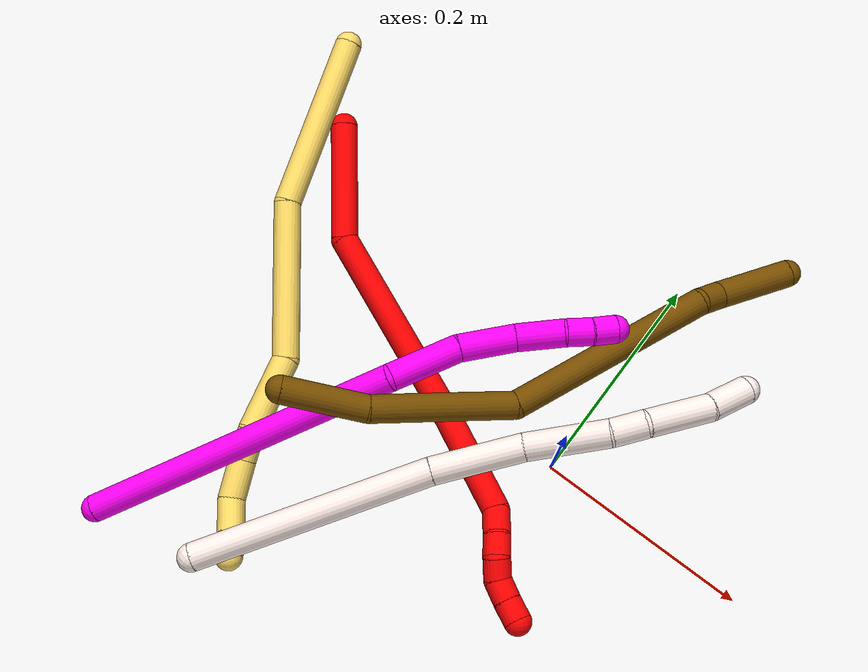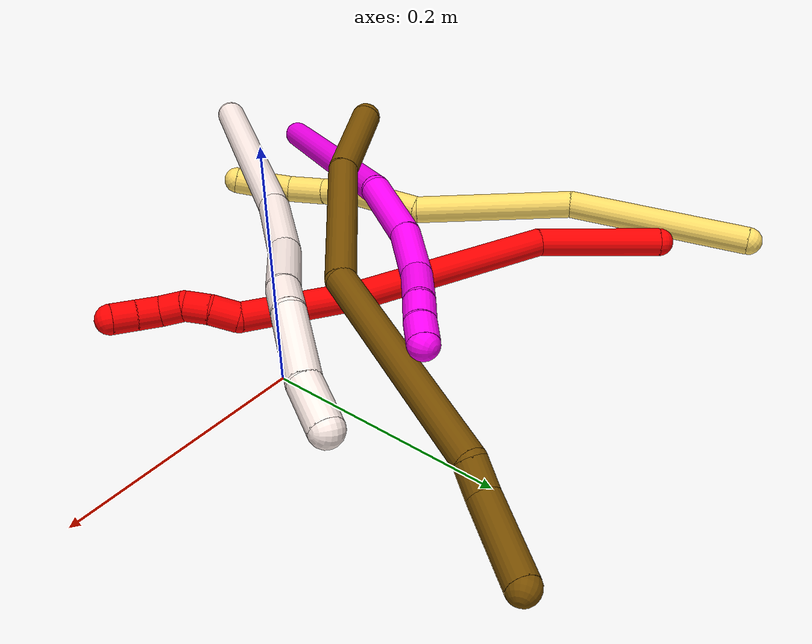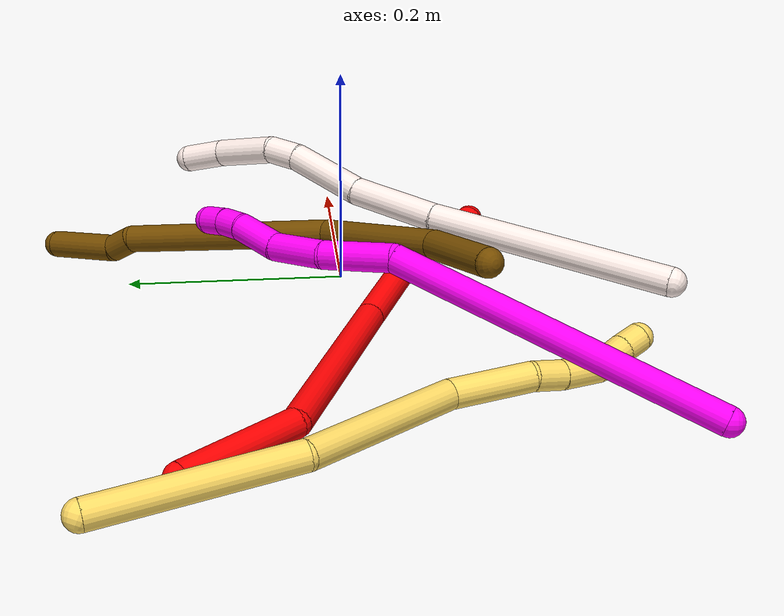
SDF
<sdf version="1.7">
 <world name="default">
  <model name="2">
   <static>0</static>
   <link name="2">
    <collision name="collision-cylinder-e_1_1_4">
     <pose>0.017048 -0.050882 0.011841 1.34214 0.315436 0.251225</pose>
     <geometry><cylinder><radius>0.0125</radius><length>0.109906</length></cylinder></geometry>
     <surface>
      <friction><ode><mu>1.16</mu><mu2>1.16</mu2><slip1>0</slip1><slip2>0</slip2></ode></friction>
      <contact><ode><kp>1e+06</kp><kd>1</kd><max_vel>0</max_vel><min_depth>0.001</min_depth></ode></contact>
     </surface>
    </collision>
    <visual name="visual-cylinder-e_1_1_4">
     <pose>0.017048 -0.050882 0.011841 1.34214 0.315436 0.251225</pose>
     <geometry><cylinder><radius>0.0125</radius><length>0.109906</length></cylinder></geometry>
     <material><ambient>1 0 0 1</ambient></material>
    </visual>
    <collision name="collision-cylinder-e_2_4_5">
     <pose>0.087703 -0.174346 0.006865 1.79849 0.623694 0.77065</pose>
     <geometry><cylinder><radius>0.0125</radius><length>0.183571</length></cylinder></geometry>
     <surface>
      <friction><ode><mu>1.16</mu><mu2>1.16</mu2><slip1>0</slip1><slip2>0</slip2></ode></friction>
      <contact><ode><kp>1e+06</kp><kd>1</kd><max_vel>0</max_vel><min_depth>0.001</min_depth></ode></contact>
     </surface>
    </collision>
    <visual name="visual-cylinder-e_2_4_5">
     <pose>0.087703 -0.174346 0.006865 1.79849 0.623694 0.77065</pose>
     <geometry><cylinder><radius>0.0125</radius><length>0.183571</length></cylinder></geometry>
     <material><ambient>1 0 0 1</ambient></material>
    </visual>
    <collision name="collision-cylinder-e_3_5_6">
     <pose>0.173005 -0.286893 -0.014467 1.68328 0.667442 0.740335</pose>
     <geometry><cylinder><radius>0.0125</radius><length>0.102416</length></cylinder></geometry>
     <surface>
      <friction><ode><mu>1.16</mu><mu2>1.16</mu2><slip1>0</slip1><slip2>0</slip2></ode></friction>
      <contact><ode><kp>1e+06</kp><kd>1</kd><max_vel>0</max_vel><min_depth>0.001</min_depth></ode></contact>
     </surface>
    </collision>
    <visual name="visual-cylinder-e_3_5_6">
     <pose>0.173005 -0.286893 -0.014467 1.68328 0.667442 0.740335</pose>
     <geometry><cylinder><radius>0.0125</radius><length>0.102416</length></cylinder></geometry>
     <material><ambient>1 0 0 1</ambient></material>
    </visual>
    <collision name="collision-cylinder-e_4_6_7">
     <pose>0.211059 -0.335785 -0.014242 1.08272 0.561437 0.343324</pose>
     <geometry><cylinder><radius>0.0125</radius><length>0.023881</length></cylinder></geometry>
     <surface>
      <friction><ode><mu>1.16</mu><mu2>1.16</mu2><slip1>0</slip1><slip2>0</slip2></ode></friction>
      <contact><ode><kp>1e+06</kp><kd>1</kd><max_vel>0</max_vel><min_depth>0.001</min_depth></ode></contact>
     </surface>
    </collision>
    <visual name="visual-cylinder-e_4_6_7">
     <pose>0.211059 -0.335785 -0.014242 1.08272 0.561437 0.343324</pose>
     <geometry><cylinder><radius>0.0125</radius><length>0.023881</length></cylinder></geometry>
     <material><ambient>1 0 0 1</ambient></material>
    </visual>
    <collision name="collision-cylinder-e_5_7_8">
     <pose>0.221375 -0.353373 -0.006142 1.20067 0.402829 0.277778</pose>
     <geometry><cylinder><radius>0.0125</radius><length>0.020198</length></cylinder></geometry>
     <surface>
      <friction><ode><mu>1.16</mu><mu2>1.16</mu2><slip1>0</slip1><slip2>0</slip2></ode></friction>
      <contact><ode><kp>1e+06</kp><kd>1</kd><max_vel>0</max_vel><min_depth>0.001</min_depth></ode></contact>
     </surface>
    </collision>
    <visual name="visual-cylinder-e_5_7_8">
     <pose>0.221375 -0.353373 -0.006142 1.20067 0.402829 0.277778</pose>
     <geometry><cylinder><radius>0.0125</radius><length>0.020198</length></cylinder></geometry>
     <material><ambient>1 0 0 1</ambient></material>
    </visual>
    <collision name="collision-cylinder-e_6_8_9">
     <pose>0.226831 -0.371916 -0.002311 1.52324 0.150207 0.143253</pose>
     <geometry><cylinder><radius>0.0125</radius><length>0.02001</length></cylinder></geometry>
     <surface>
      <friction><ode><mu>1.16</mu><mu2>1.16</mu2><slip1>0</slip1><slip2>0</slip2></ode></friction>
      <contact><ode><kp>1e+06</kp><kd>1</kd><max_vel>0</max_vel><min_depth>0.001</min_depth></ode></contact>
     </surface>
    </collision>
    <visual name="visual-cylinder-e_6_8_9">
     <pose>0.226831 -0.371916 -0.002311 1.52324 0.150207 0.143253</pose>
     <geometry><cylinder><radius>0.0125</radius><length>0.02001</length></cylinder></geometry>
     <material><ambient>1 0 0 1</ambient></material>
    </visual>
    <collision name="collision-cylinder-e_7_9_10">
     <pose>0.234152 -0.38991 -0.002439 1.64436 0.621316 0.665472</pose>
     <geometry><cylinder><radius>0.0125</radius><length>0.020008</length></cylinder></geometry>
     <surface>
      <friction><ode><mu>1.16</mu><mu2>1.16</mu2><slip1>0</slip1><slip2>0</slip2></ode></friction>
      <contact><ode><kp>1e+06</kp><kd>1</kd><max_vel>0</max_vel><min_depth>0.001</min_depth></ode></contact>
     </surface>
    </collision>
    <visual name="visual-cylinder-e_7_9_10">
     <pose>0.234152 -0.38991 -0.002439 1.64436 0.621316 0.665472</pose>
     <geometry><cylinder><radius>0.0125</radius><length>0.020008</length></cylinder></geometry>
     <material><ambient>1 0 0 1</ambient></material>
    </visual>
    <collision name="collision-cylinder-e_8_10_2">
     <pose>0.246251 -0.405777 -0.003805 1.66953 0.677973 0.742411</pose>
     <geometry><cylinder><radius>0.0125</radius><length>0.02001</length></cylinder></geometry>
     <surface>
      <friction><ode><mu>1.16</mu><mu2>1.16</mu2><slip1>0</slip1><slip2>0</slip2></ode></friction>
      <contact><ode><kp>1e+06</kp><kd>1</kd><max_vel>0</max_vel><min_depth>0.001</min_depth></ode></contact>
     </surface>
    </collision>
    <visual name="visual-cylinder-e_8_10_2">
     <pose>0.246251 -0.405777 -0.003805 1.66953 0.677973 0.742411</pose>
     <geometry><cylinder><radius>0.0125</radius><length>0.02001</length></cylinder></geometry>
     <material><ambient>1 0 0 1</ambient></material>
    </visual>
    <collision name="collision-sphere-2">
     <pose>0.252526 -0.413531 -0.004573 0 -0 0</pose>
     <geometry><sphere><radius>0.0125</radius></sphere></geometry>
     <surface>
      <friction><ode><mu>1.16</mu><mu2>1.16</mu2><slip1>0</slip1><slip2>0</slip2></ode></friction>
      <contact><ode><kp>1e+06</kp><kd>1</kd><max_vel>0</max_vel><min_depth>0.001</min_depth></ode></contact>
     </surface>
    </collision>
    <visual name="visual-sphere-2">
     <pose>0.252526 -0.413531 -0.004573 0 -0 0</pose>
     <geometry><sphere><radius>0.0125</radius></sphere></geometry>
     <material><ambient>1 0 0 1</ambient></material>
    </visual>
    <collision name="collision-sphere-10">
     <pose>0.239975 -0.398022 -0.003036 0 -0 0</pose>
     <geometry><sphere><radius>0.0125</radius></sphere></geometry>
     <surface>
      <friction><ode><mu>1.16</mu><mu2>1.16</mu2><slip1>0</slip1><slip2>0</slip2></ode></friction>
      <contact><ode><kp>1e+06</kp><kd>1</kd><max_vel>0</max_vel><min_depth>0.001</min_depth></ode></contact>
     </surface>
    </collision>
    <visual name="visual-sphere-10">
     <pose>0.239975 -0.398022 -0.003036 0 -0 0</pose>
     <geometry><sphere><radius>0.0125</radius></sphere></geometry>
     <material><ambient>1 0 0 1</ambient></material>
    </visual>
    <collision name="collision-sphere-9">
     <pose>0.228329 -0.381797 -0.001841 0 -0 0</pose>
     <geometry><sphere><radius>0.0125</radius></sphere></geometry>
     <surface>
      <friction><ode><mu>1.16</mu><mu2>1.16</mu2><slip1>0</slip1><slip2>0</slip2></ode></friction>
      <contact><ode><kp>1e+06</kp><kd>1</kd><max_vel>0</max_vel><min_depth>0.001</min_depth></ode></contact>
     </surface>
    </collision>
    <visual name="visual-sphere-9">
     <pose>0.228329 -0.381797 -0.001841 0 -0 0</pose>
     <geometry><sphere><radius>0.0125</radius></sphere></geometry>
     <material><ambient>1 0 0 1</ambient></material>
    </visual>
    <collision name="collision-sphere-4">
     <pose>0.034096 -0.101764 0.023683 0 -0 0</pose>
     <geometry><sphere><radius>0.0125</radius></sphere></geometry>
     <surface>
      <friction><ode><mu>1.16</mu><mu2>1.16</mu2><slip1>0</slip1><slip2>0</slip2></ode></friction>
      <contact><ode><kp>1e+06</kp><kd>1</kd><max_vel>0</max_vel><min_depth>0.001</min_depth></ode></contact>
     </surface>
    </collision>
    <visual name="visual-sphere-4">
     <pose>0.034096 -0.101764 0.023683 0 -0 0</pose>
     <geometry><sphere><radius>0.0125</radius></sphere></geometry>
     <material><ambient>1 0 0 1</ambient></material>
    </visual>
    <collision name="collision-sphere-1">
     <geometry><sphere><radius>0.0125</radius></sphere></geometry>
     <surface>
      <friction><ode><mu>1.16</mu><mu2>1.16</mu2><slip1>0</slip1><slip2>0</slip2></ode></friction>
      <contact><ode><kp>1e+06</kp><kd>1</kd><max_vel>0</max_vel><min_depth>0.001</min_depth></ode></contact>
     </surface>
    </collision>
    <visual name="visual-sphere-1">
     <geometry><sphere><radius>0.0125</radius></sphere></geometry>
     <material><ambient>1 0 0 1</ambient></material>
    </visual>
    <collision name="collision-sphere-8">
     <pose>0.225334 -0.362035 -0.002781 0 -0 0</pose>
     <geometry><sphere><radius>0.0125</radius></sphere></geometry>
     <surface>
      <friction><ode><mu>1.16</mu><mu2>1.16</mu2><slip1>0</slip1><slip2>0</slip2></ode></friction>
      <contact><ode><kp>1e+06</kp><kd>1</kd><max_vel>0</max_vel><min_depth>0.001</min_depth></ode></contact>
     </surface>
    </collision>
    <visual name="visual-sphere-8">
     <pose>0.225334 -0.362035 -0.002781 0 -0 0</pose>
     <geometry><sphere><radius>0.0125</radius></sphere></geometry>
     <material><ambient>1 0 0 1</ambient></material>
    </visual>
    <collision name="collision-sphere-5">
     <pose>0.141309 -0.246928 -0.009953 0 -0 0</pose>
     <geometry><sphere><radius>0.0125</radius></sphere></geometry>
     <surface>
      <friction><ode><mu>1.16</mu><mu2>1.16</mu2><slip1>0</slip1><slip2>0</slip2></ode></friction>
      <contact><ode><kp>1e+06</kp><kd>1</kd><max_vel>0</max_vel><min_depth>0.001</min_depth></ode></contact>
     </surface>
    </collision>
    <visual name="visual-sphere-5">
     <pose>0.141309 -0.246928 -0.009953 0 -0 0</pose>
     <geometry><sphere><radius>0.0125</radius></sphere></geometry>
     <material><ambient>1 0 0 1</ambient></material>
    </visual>
    <collision name="collision-sphere-6">
     <pose>0.204702 -0.326858 -0.018982 0 -0 0</pose>
     <geometry><sphere><radius>0.0125</radius></sphere></geometry>
     <surface>
      <friction><ode><mu>1.16</mu><mu2>1.16</mu2><slip1>0</slip1><slip2>0</slip2></ode></friction>
      <contact><ode><kp>1e+06</kp><kd>1</kd><max_vel>0</max_vel><min_depth>0.001</min_depth></ode></contact>
     </surface>
    </collision>
    <visual name="visual-sphere-6">
     <pose>0.204702 -0.326858 -0.018982 0 -0 0</pose>
     <geometry><sphere><radius>0.0125</radius></sphere></geometry>
     <material><ambient>1 0 0 1</ambient></material>
    </visual>
    <collision name="collision-sphere-7">
     <pose>0.217416 -0.344712 -0.009503 0 -0 0</pose>
     <geometry><sphere><radius>0.0125</radius></sphere></geometry>
     <surface>
      <friction><ode><mu>1.16</mu><mu2>1.16</mu2><slip1>0</slip1><slip2>0</slip2></ode></friction>
      <contact><ode><kp>1e+06</kp><kd>1</kd><max_vel>0</max_vel><min_depth>0.001</min_depth></ode></contact>
     </surface>
    </collision>
    <visual name="visual-sphere-7">
     <pose>0.217416 -0.344712 -0.009503 0 -0 0</pose>
     <geometry><sphere><radius>0.0125</radius></sphere></geometry>
     <material><ambient>1 0 0 1</ambient></material>
    </visual>
    <inertial>
     <pose>0.118709 -0.210997 0.000889 0 -0 0</pose>
     <mass>0.5</mass>
     <inertia>
      <ixx>0.000865</ixx>
      <ixy>0</ixy>
      <ixz>0</ixz>
      <iyy>0.000533</iyy>
      <iyz>0</iyz>
      <izz>0.000196</izz>
     </inertia>
    </inertial>
   </link>
   <pose>-0.343339 0.142122 0.01142 0.560754 -0.786234 0.203623</pose>
  </model>
  <model name="5">
   <static>0</static>
   <link name="5">
    <collision name="collision-cylinder-e_1_1_4">
     <pose>0.049789 -0.049748 -0.044326 2.29862 0.641732 1.27578</pose>
     <geometry><cylinder><radius>0.0125</radius><length>0.166355</length></cylinder></geometry>
     <surface>
      <friction><ode><mu>1.16</mu><mu2>1.16</mu2><slip1>0</slip1><slip2>0</slip2></ode></friction>
      <contact><ode><kp>1e+06</kp><kd>1</kd><max_vel>0</max_vel><min_depth>0.001</min_depth></ode></contact>
     </surface>
    </collision>
    <visual name="visual-cylinder-e_1_1_4">
     <pose>0.049789 -0.049748 -0.044326 2.29862 0.641732 1.27578</pose>
     <geometry><cylinder><radius>0.0125</radius><length>0.166355</length></cylinder></geometry>
     <material><ambient>1 0.858824 0.4 1</ambient></material>
    </visual>
    <collision name="collision-cylinder-e_2_4_5">
     <pose>0.121333 -0.154661 -0.130954 2.22499 0.303291 0.600782</pose>
     <geometry><cylinder><radius>0.0125</radius><length>0.145685</length></cylinder></geometry>
     <surface>
      <friction><ode><mu>1.16</mu><mu2>1.16</mu2><slip1>0</slip1><slip2>0</slip2></ode></friction>
      <contact><ode><kp>1e+06</kp><kd>1</kd><max_vel>0</max_vel><min_depth>0.001</min_depth></ode></contact>
     </surface>
    </collision>
    <visual name="visual-cylinder-e_2_4_5">
     <pose>0.121333 -0.154661 -0.130954 2.22499 0.303291 0.600782</pose>
     <geometry><cylinder><radius>0.0125</radius><length>0.145685</length></cylinder></geometry>
     <material><ambient>1 0.858824 0.4 1</ambient></material>
    </visual>
    <collision name="collision-cylinder-e_3_5_6">
     <pose>0.166723 -0.229373 -0.191239 2.31451 0.727186 1.42864</pose>
     <geometry><cylinder><radius>0.0125</radius><length>0.071108</length></cylinder></geometry>
     <surface>
      <friction><ode><mu>1.16</mu><mu2>1.16</mu2><slip1>0</slip1><slip2>0</slip2></ode></friction>
      <contact><ode><kp>1e+06</kp><kd>1</kd><max_vel>0</max_vel><min_depth>0.001</min_depth></ode></contact>
     </surface>
    </collision>
    <visual name="visual-cylinder-e_3_5_6">
     <pose>0.166723 -0.229373 -0.191239 2.31451 0.727186 1.42864</pose>
     <geometry><cylinder><radius>0.0125</radius><length>0.071108</length></cylinder></geometry>
     <material><ambient>1 0.858824 0.4 1</ambient></material>
    </visual>
    <collision name="collision-cylinder-e_4_6_7">
     <pose>0.198143 -0.25922 -0.214323 2.03071 0.595288 0.918122</pose>
     <geometry><cylinder><radius>0.0125</radius><length>0.027763</length></cylinder></geometry>
     <surface>
      <friction><ode><mu>1.16</mu><mu2>1.16</mu2><slip1>0</slip1><slip2>0</slip2></ode></friction>
      <contact><ode><kp>1e+06</kp><kd>1</kd><max_vel>0</max_vel><min_depth>0.001</min_depth></ode></contact>
     </surface>
    </collision>
    <visual name="visual-cylinder-e_4_6_7">
     <pose>0.198143 -0.25922 -0.214323 2.03071 0.595288 0.918122</pose>
     <geometry><cylinder><radius>0.0125</radius><length>0.027763</length></cylinder></geometry>
     <material><ambient>1 0.858824 0.4 1</ambient></material>
    </visual>
    <collision name="collision-cylinder-e_5_7_8">
     <pose>0.215695 -0.282269 -0.228299 2.17889 0.561348 1.00863</pose>
     <geometry><cylinder><radius>0.0125</radius><length>0.036699</length></cylinder></geometry>
     <surface>
      <friction><ode><mu>1.16</mu><mu2>1.16</mu2><slip1>0</slip1><slip2>0</slip2></ode></friction>
      <contact><ode><kp>1e+06</kp><kd>1</kd><max_vel>0</max_vel><min_depth>0.001</min_depth></ode></contact>
     </surface>
    </collision>
    <visual name="visual-cylinder-e_5_7_8">
     <pose>0.215695 -0.282269 -0.228299 2.17889 0.561348 1.00863</pose>
     <geometry><cylinder><radius>0.0125</radius><length>0.036699</length></cylinder></geometry>
     <material><ambient>1 0.858824 0.4 1</ambient></material>
    </visual>
    <collision name="collision-cylinder-e_6_8_9">
     <pose>0.229809 -0.304439 -0.248861 2.46314 0.281827 0.764464</pose>
     <geometry><cylinder><radius>0.0125</radius><length>0.031258</length></cylinder></geometry>
     <surface>
      <friction><ode><mu>1.16</mu><mu2>1.16</mu2><slip1>0</slip1><slip2>0</slip2></ode></friction>
      <contact><ode><kp>1e+06</kp><kd>1</kd><max_vel>0</max_vel><min_depth>0.001</min_depth></ode></contact>
     </surface>
    </collision>
    <visual name="visual-cylinder-e_6_8_9">
     <pose>0.229809 -0.304439 -0.248861 2.46314 0.281827 0.764464</pose>
     <geometry><cylinder><radius>0.0125</radius><length>0.031258</length></cylinder></geometry>
     <material><ambient>1 0.858824 0.4 1</ambient></material>
    </visual>
    <collision name="collision-cylinder-e_7_9_2">
     <pose>0.237832 -0.320062 -0.268273 2.46515 0.355394 0.944159</pose>
     <geometry><cylinder><radius>0.0125</radius><length>0.021132</length></cylinder></geometry>
     <surface>
      <friction><ode><mu>1.16</mu><mu2>1.16</mu2><slip1>0</slip1><slip2>0</slip2></ode></friction>
      <contact><ode><kp>1e+06</kp><kd>1</kd><max_vel>0</max_vel><min_depth>0.001</min_depth></ode></contact>
     </surface>
    </collision>
    <visual name="visual-cylinder-e_7_9_2">
     <pose>0.237832 -0.320062 -0.268273 2.46515 0.355394 0.944159</pose>
     <geometry><cylinder><radius>0.0125</radius><length>0.021132</length></cylinder></geometry>
     <material><ambient>1 0.858824 0.4 1</ambient></material>
    </visual>
    <collision name="collision-sphere-2">
     <pose>0.241509 -0.326263 -0.275998 0 -0 0</pose>
     <geometry><sphere><radius>0.0125</radius></sphere></geometry>
     <surface>
      <friction><ode><mu>1.16</mu><mu2>1.16</mu2><slip1>0</slip1><slip2>0</slip2></ode></friction>
      <contact><ode><kp>1e+06</kp><kd>1</kd><max_vel>0</max_vel><min_depth>0.001</min_depth></ode></contact>
     </surface>
    </collision>
    <visual name="visual-sphere-2">
     <pose>0.241509 -0.326263 -0.275998 0 -0 0</pose>
     <geometry><sphere><radius>0.0125</radius></sphere></geometry>
     <material><ambient>1 0.858824 0.4 1</ambient></material>
    </visual>
    <collision name="collision-sphere-9">
     <pose>0.234156 -0.313861 -0.260549 0 -0 0</pose>
     <geometry><sphere><radius>0.0125</radius></sphere></geometry>
     <surface>
      <friction><ode><mu>1.16</mu><mu2>1.16</mu2><slip1>0</slip1><slip2>0</slip2></ode></friction>
      <contact><ode><kp>1e+06</kp><kd>1</kd><max_vel>0</max_vel><min_depth>0.001</min_depth></ode></contact>
     </surface>
    </collision>
    <visual name="visual-sphere-9">
     <pose>0.234156 -0.313861 -0.260549 0 -0 0</pose>
     <geometry><sphere><radius>0.0125</radius></sphere></geometry>
     <material><ambient>1 0.858824 0.4 1</ambient></material>
    </visual>
    <collision name="collision-sphere-4">
     <pose>0.099578 -0.099496 -0.088651 0 -0 0</pose>
     <geometry><sphere><radius>0.0125</radius></sphere></geometry>
     <surface>
      <friction><ode><mu>1.16</mu><mu2>1.16</mu2><slip1>0</slip1><slip2>0</slip2></ode></friction>
      <contact><ode><kp>1e+06</kp><kd>1</kd><max_vel>0</max_vel><min_depth>0.001</min_depth></ode></contact>
     </surface>
    </collision>
    <visual name="visual-sphere-4">
     <pose>0.099578 -0.099496 -0.088651 0 -0 0</pose>
     <geometry><sphere><radius>0.0125</radius></sphere></geometry>
     <material><ambient>1 0.858824 0.4 1</ambient></material>
    </visual>
    <collision name="collision-sphere-1">
     <geometry><sphere><radius>0.0125</radius></sphere></geometry>
     <surface>
      <friction><ode><mu>1.16</mu><mu2>1.16</mu2><slip1>0</slip1><slip2>0</slip2></ode></friction>
      <contact><ode><kp>1e+06</kp><kd>1</kd><max_vel>0</max_vel><min_depth>0.001</min_depth></ode></contact>
     </surface>
    </collision>
    <visual name="visual-sphere-1">
     <geometry><sphere><radius>0.0125</radius></sphere></geometry>
     <material><ambient>1 0.858824 0.4 1</ambient></material>
    </visual>
    <collision name="collision-sphere-8">
     <pose>0.225462 -0.295018 -0.237173 0 -0 0</pose>
     <geometry><sphere><radius>0.0125</radius></sphere></geometry>
     <surface>
      <friction><ode><mu>1.16</mu><mu2>1.16</mu2><slip1>0</slip1><slip2>0</slip2></ode></friction>
      <contact><ode><kp>1e+06</kp><kd>1</kd><max_vel>0</max_vel><min_depth>0.001</min_depth></ode></contact>
     </surface>
    </collision>
    <visual name="visual-sphere-8">
     <pose>0.225462 -0.295018 -0.237173 0 -0 0</pose>
     <geometry><sphere><radius>0.0125</radius></sphere></geometry>
     <material><ambient>1 0.858824 0.4 1</ambient></material>
    </visual>
    <collision name="collision-sphere-5">
     <pose>0.143088 -0.209826 -0.173257 0 -0 0</pose>
     <geometry><sphere><radius>0.0125</radius></sphere></geometry>
     <surface>
      <friction><ode><mu>1.16</mu><mu2>1.16</mu2><slip1>0</slip1><slip2>0</slip2></ode></friction>
      <contact><ode><kp>1e+06</kp><kd>1</kd><max_vel>0</max_vel><min_depth>0.001</min_depth></ode></contact>
     </surface>
    </collision>
    <visual name="visual-sphere-5">
     <pose>0.143088 -0.209826 -0.173257 0 -0 0</pose>
     <geometry><sphere><radius>0.0125</radius></sphere></geometry>
     <material><ambient>1 0.858824 0.4 1</ambient></material>
    </visual>
    <collision name="collision-sphere-6">
     <pose>0.190358 -0.248921 -0.209221 0 -0 0</pose>
     <geometry><sphere><radius>0.0125</radius></sphere></geometry>
     <surface>
      <friction><ode><mu>1.16</mu><mu2>1.16</mu2><slip1>0</slip1><slip2>0</slip2></ode></friction>
      <contact><ode><kp>1e+06</kp><kd>1</kd><max_vel>0</max_vel><min_depth>0.001</min_depth></ode></contact>
     </surface>
    </collision>
    <visual name="visual-sphere-6">
     <pose>0.190358 -0.248921 -0.209221 0 -0 0</pose>
     <geometry><sphere><radius>0.0125</radius></sphere></geometry>
     <material><ambient>1 0.858824 0.4 1</ambient></material>
    </visual>
    <collision name="collision-sphere-7">
     <pose>0.205927 -0.26952 -0.219425 0 -0 0</pose>
     <geometry><sphere><radius>0.0125</radius></sphere></geometry>
     <surface>
      <friction><ode><mu>1.16</mu><mu2>1.16</mu2><slip1>0</slip1><slip2>0</slip2></ode></friction>
      <contact><ode><kp>1e+06</kp><kd>1</kd><max_vel>0</max_vel><min_depth>0.001</min_depth></ode></contact>
     </surface>
    </collision>
    <visual name="visual-sphere-7">
     <pose>0.205927 -0.26952 -0.219425 0 -0 0</pose>
     <geometry><sphere><radius>0.0125</radius></sphere></geometry>
     <material><ambient>1 0.858824 0.4 1</ambient></material>
    </visual>
    <inertial>
     <pose>0.126881 -0.161906 -0.135654 0 -0 0</pose>
     <mass>0.5</mass>
     <inertia>
      <ixx>0.000803</ixx>
      <ixy>0</ixy>
      <ixz>0</ixz>
      <iyy>0.000455</iyy>
      <iyz>0</iyz>
      <izz>9.8e-05</izz>
     </inertia>
    </inertial>
   </link>
   <pose>-0.388568 0.207896 0.015225 2.42265 -0.053593 -2.18885</pose>
  </model>
  <model name="10">
   <static>0</static>
   <link name="10">
    <collision name="collision-cylinder-e_1_1_4">
     <pose>0.01464 0.074777 -0.126042 -2.60613 0.099561 -0.359329</pose>
     <geometry><cylinder><radius>0.0125</radius><length>0.294568</length></cylinder></geometry>
     <surface>
      <friction><ode><mu>1.16</mu><mu2>1.16</mu2><slip1>0</slip1><slip2>0</slip2></ode></friction>
      <contact><ode><kp>1e+06</kp><kd>1</kd><max_vel>0</max_vel><min_depth>0.001</min_depth></ode></contact>
     </surface>
    </collision>
    <visual name="visual-cylinder-e_1_1_4">
     <pose>0.01464 0.074777 -0.126042 -2.60613 0.099561 -0.359329</pose>
     <geometry><cylinder><radius>0.0125</radius><length>0.294568</length></cylinder></geometry>
     <material><ambient>1 0 0.964706 1</ambient></material>
    </visual>
    <collision name="collision-cylinder-e_2_4_5">
     <pose>0.0418 0.156882 -0.281098 -2.8942 0.396277 -2.03267</pose>
     <geometry><cylinder><radius>0.0125</radius><length>0.064876</length></cylinder></geometry>
     <surface>
      <friction><ode><mu>1.16</mu><mu2>1.16</mu2><slip1>0</slip1><slip2>0</slip2></ode></friction>
      <contact><ode><kp>1e+06</kp><kd>1</kd><max_vel>0</max_vel><min_depth>0.001</min_depth></ode></contact>
     </surface>
    </collision>
    <visual name="visual-cylinder-e_2_4_5">
     <pose>0.0418 0.156882 -0.281098 -2.8942 0.396277 -2.03267</pose>
     <geometry><cylinder><radius>0.0125</radius><length>0.064876</length></cylinder></geometry>
     <material><ambient>1 0 0.964706 1</ambient></material>
    </visual>
    <collision name="collision-cylinder-e_3_5_6">
     <pose>0.067266 0.174244 -0.330393 -2.6822 0.519642 -1.69874</pose>
     <geometry><cylinder><radius>0.0125</radius><length>0.052139</length></cylinder></geometry>
     <surface>
      <friction><ode><mu>1.16</mu><mu2>1.16</mu2><slip1>0</slip1><slip2>0</slip2></ode></friction>
      <contact><ode><kp>1e+06</kp><kd>1</kd><max_vel>0</max_vel><min_depth>0.001</min_depth></ode></contact>
     </surface>
    </collision>
    <visual name="visual-cylinder-e_3_5_6">
     <pose>0.067266 0.174244 -0.330393 -2.6822 0.519642 -1.69874</pose>
     <geometry><cylinder><radius>0.0125</radius><length>0.052139</length></cylinder></geometry>
     <material><ambient>1 0 0.964706 1</ambient></material>
    </visual>
    <collision name="collision-cylinder-e_4_6_7">
     <pose>0.088071 0.197839 -0.36601 -2.41747 0.3666 -0.910336</pose>
     <geometry><cylinder><radius>0.0125</radius><length>0.043857</length></cylinder></geometry>
     <surface>
      <friction><ode><mu>1.16</mu><mu2>1.16</mu2><slip1>0</slip1><slip2>0</slip2></ode></friction>
      <contact><ode><kp>1e+06</kp><kd>1</kd><max_vel>0</max_vel><min_depth>0.001</min_depth></ode></contact>
     </surface>
    </collision>
    <visual name="visual-cylinder-e_4_6_7">
     <pose>0.088071 0.197839 -0.36601 -2.41747 0.3666 -0.910336</pose>
     <geometry><cylinder><radius>0.0125</radius><length>0.043857</length></cylinder></geometry>
     <material><ambient>1 0 0.964706 1</ambient></material>
    </visual>
    <collision name="collision-cylinder-e_5_7_8">
     <pose>0.102092 0.217193 -0.389247 -2.50905 0.561353 -1.44434</pose>
     <geometry><cylinder><radius>0.0125</radius><length>0.023148</length></cylinder></geometry>
     <surface>
      <friction><ode><mu>1.16</mu><mu2>1.16</mu2><slip1>0</slip1><slip2>0</slip2></ode></friction>
      <contact><ode><kp>1e+06</kp><kd>1</kd><max_vel>0</max_vel><min_depth>0.001</min_depth></ode></contact>
     </surface>
    </collision>
    <visual name="visual-cylinder-e_5_7_8">
     <pose>0.102092 0.217193 -0.389247 -2.50905 0.561353 -1.44434</pose>
     <geometry><cylinder><radius>0.0125</radius><length>0.023148</length></cylinder></geometry>
     <material><ambient>1 0 0.964706 1</ambient></material>
    </visual>
    <collision name="collision-cylinder-e_6_8_2">
     <pose>0.114375 0.22706 -0.40493 -2.65923 0.60869 -1.81291</pose>
     <geometry><cylinder><radius>0.0125</radius><length>0.021412</length></cylinder></geometry>
     <surface>
      <friction><ode><mu>1.16</mu><mu2>1.16</mu2><slip1>0</slip1><slip2>0</slip2></ode></friction>
      <contact><ode><kp>1e+06</kp><kd>1</kd><max_vel>0</max_vel><min_depth>0.001</min_depth></ode></contact>
     </surface>
    </collision>
    <visual name="visual-cylinder-e_6_8_2">
     <pose>0.114375 0.22706 -0.40493 -2.65923 0.60869 -1.81291</pose>
     <geometry><cylinder><radius>0.0125</radius><length>0.021412</length></cylinder></geometry>
     <material><ambient>1 0 0.964706 1</ambient></material>
    </visual>
    <collision name="collision-sphere-2">
     <pose>0.120497 0.231134 -0.412711 0 -0 0</pose>
     <geometry><sphere><radius>0.0125</radius></sphere></geometry>
     <surface>
      <friction><ode><mu>1.16</mu><mu2>1.16</mu2><slip1>0</slip1><slip2>0</slip2></ode></friction>
      <contact><ode><kp>1e+06</kp><kd>1</kd><max_vel>0</max_vel><min_depth>0.001</min_depth></ode></contact>
     </surface>
    </collision>
    <visual name="visual-sphere-2">
     <pose>0.120497 0.231134 -0.412711 0 -0 0</pose>
     <geometry><sphere><radius>0.0125</radius></sphere></geometry>
     <material><ambient>1 0 0.964706 1</ambient></material>
    </visual>
    <collision name="collision-sphere-4">
     <pose>0.029279 0.149555 -0.252084 0 -0 0</pose>
     <geometry><sphere><radius>0.0125</radius></sphere></geometry>
     <surface>
      <friction><ode><mu>1.16</mu><mu2>1.16</mu2><slip1>0</slip1><slip2>0</slip2></ode></friction>
      <contact><ode><kp>1e+06</kp><kd>1</kd><max_vel>0</max_vel><min_depth>0.001</min_depth></ode></contact>
     </surface>
    </collision>
    <visual name="visual-sphere-4">
     <pose>0.029279 0.149555 -0.252084 0 -0 0</pose>
     <geometry><sphere><radius>0.0125</radius></sphere></geometry>
     <material><ambient>1 0 0.964706 1</ambient></material>
    </visual>
    <collision name="collision-sphere-1">
     <geometry><sphere><radius>0.0125</radius></sphere></geometry>
     <surface>
      <friction><ode><mu>1.16</mu><mu2>1.16</mu2><slip1>0</slip1><slip2>0</slip2></ode></friction>
      <contact><ode><kp>1e+06</kp><kd>1</kd><max_vel>0</max_vel><min_depth>0.001</min_depth></ode></contact>
     </surface>
    </collision>
    <visual name="visual-sphere-1">
     <geometry><sphere><radius>0.0125</radius></sphere></geometry>
     <material><ambient>1 0 0.964706 1</ambient></material>
    </visual>
    <collision name="collision-sphere-8">
     <pose>0.108254 0.222985 -0.397149 0 -0 0</pose>
     <geometry><sphere><radius>0.0125</radius></sphere></geometry>
     <surface>
      <friction><ode><mu>1.16</mu><mu2>1.16</mu2><slip1>0</slip1><slip2>0</slip2></ode></friction>
      <contact><ode><kp>1e+06</kp><kd>1</kd><max_vel>0</max_vel><min_depth>0.001</min_depth></ode></contact>
     </surface>
    </collision>
    <visual name="visual-sphere-8">
     <pose>0.108254 0.222985 -0.397149 0 -0 0</pose>
     <geometry><sphere><radius>0.0125</radius></sphere></geometry>
     <material><ambient>1 0 0.964706 1</ambient></material>
    </visual>
    <collision name="collision-sphere-5">
     <pose>0.054321 0.16421 -0.310111 0 -0 0</pose>
     <geometry><sphere><radius>0.0125</radius></sphere></geometry>
     <surface>
      <friction><ode><mu>1.16</mu><mu2>1.16</mu2><slip1>0</slip1><slip2>0</slip2></ode></friction>
      <contact><ode><kp>1e+06</kp><kd>1</kd><max_vel>0</max_vel><min_depth>0.001</min_depth></ode></contact>
     </surface>
    </collision>
    <visual name="visual-sphere-5">
     <pose>0.054321 0.16421 -0.310111 0 -0 0</pose>
     <geometry><sphere><radius>0.0125</radius></sphere></geometry>
     <material><ambient>1 0 0.964706 1</ambient></material>
    </visual>
    <collision name="collision-sphere-6">
     <pose>0.080211 0.184277 -0.350675 0 -0 0</pose>
     <geometry><sphere><radius>0.0125</radius></sphere></geometry>
     <surface>
      <friction><ode><mu>1.16</mu><mu2>1.16</mu2><slip1>0</slip1><slip2>0</slip2></ode></friction>
      <contact><ode><kp>1e+06</kp><kd>1</kd><max_vel>0</max_vel><min_depth>0.001</min_depth></ode></contact>
     </surface>
    </collision>
    <visual name="visual-sphere-6">
     <pose>0.080211 0.184277 -0.350675 0 -0 0</pose>
     <geometry><sphere><radius>0.0125</radius></sphere></geometry>
     <material><ambient>1 0 0.964706 1</ambient></material>
    </visual>
    <collision name="collision-sphere-7">
     <pose>0.095931 0.211401 -0.381345 0 -0 0</pose>
     <geometry><sphere><radius>0.0125</radius></sphere></geometry>
     <surface>
      <friction><ode><mu>1.16</mu><mu2>1.16</mu2><slip1>0</slip1><slip2>0</slip2></ode></friction>
      <contact><ode><kp>1e+06</kp><kd>1</kd><max_vel>0</max_vel><min_depth>0.001</min_depth></ode></contact>
     </surface>
    </collision>
    <visual name="visual-sphere-7">
     <pose>0.095931 0.211401 -0.381345 0 -0 0</pose>
     <geometry><sphere><radius>0.0125</radius></sphere></geometry>
     <material><ambient>1 0 0.964706 1</ambient></material>
    </visual>
    <inertial>
     <pose>0.038412 0.119712 -0.212647 0 -0 0</pose>
     <mass>0.5</mass>
     <inertia>
      <ixx>0.001206</ixx>
      <ixy>0</ixy>
      <ixz>0</ixz>
      <iyy>-0.002443</iyy>
      <iyz>0</iyz>
      <izz>-0.001372</izz>
     </inertia>
    </inertial>
   </link>
   <pose>-0.303548 -0.273958 0.012474 1.62031 0.901983 -0.018793</pose>
  </model>
  <model name="11">
   <static>0</static>
   <link name="11">
    <collision name="collision-cylinder-e_1_1_4">
     <pose>0.082782 0.057958 -0.036772 -2.13618 0.878531 -1.41433</pose>
     <geometry><cylinder><radius>0.0125</radius><length>0.215074</length></cylinder></geometry>
     <surface>
      <friction><ode><mu>1.16</mu><mu2>1.16</mu2><slip1>0</slip1><slip2>0</slip2></ode></friction>
      <contact><ode><kp>1e+06</kp><kd>1</kd><max_vel>0</max_vel><min_depth>0.001</min_depth></ode></contact>
     </surface>
    </collision>
    <visual name="visual-cylinder-e_1_1_4">
     <pose>0.082782 0.057958 -0.036772 -2.13618 0.878531 -1.41433</pose>
     <geometry><cylinder><radius>0.0125</radius><length>0.215074</length></cylinder></geometry>
     <material><ambient>1 0.933333 0.909804 1</ambient></material>
    </visual>
    <collision name="collision-cylinder-e_2_4_5">
     <pose>0.19556 0.137293 -0.091189 -2.26082 0.82483 -1.49655</pose>
     <geometry><cylinder><radius>0.0125</radius><length>0.081684</length></cylinder></geometry>
     <surface>
      <friction><ode><mu>1.16</mu><mu2>1.16</mu2><slip1>0</slip1><slip2>0</slip2></ode></friction>
      <contact><ode><kp>1e+06</kp><kd>1</kd><max_vel>0</max_vel><min_depth>0.001</min_depth></ode></contact>
     </surface>
    </collision>
    <visual name="visual-cylinder-e_2_4_5">
     <pose>0.19556 0.137293 -0.091189 -2.26082 0.82483 -1.49655</pose>
     <geometry><cylinder><radius>0.0125</radius><length>0.081684</length></cylinder></geometry>
     <material><ambient>1 0.933333 0.909804 1</ambient></material>
    </visual>
    <collision name="collision-cylinder-e_3_5_6">
     <pose>0.252691 0.173838 -0.129157 -2.50048 0.819209 -1.83589</pose>
     <geometry><cylinder><radius>0.0125</radius><length>0.07428</length></cylinder></geometry>
     <surface>
      <friction><ode><mu>1.16</mu><mu2>1.16</mu2><slip1>0</slip1><slip2>0</slip2></ode></friction>
      <contact><ode><kp>1e+06</kp><kd>1</kd><max_vel>0</max_vel><min_depth>0.001</min_depth></ode></contact>
     </surface>
    </collision>
    <visual name="visual-cylinder-e_3_5_6">
     <pose>0.252691 0.173838 -0.129157 -2.50048 0.819209 -1.83589</pose>
     <geometry><cylinder><radius>0.0125</radius><length>0.07428</length></cylinder></geometry>
     <material><ambient>1 0.933333 0.909804 1</ambient></material>
    </visual>
    <collision name="collision-cylinder-e_4_6_7">
     <pose>0.290823 0.197299 -0.155746 -2.2177 0.813584 -1.42664</pose>
     <geometry><cylinder><radius>0.0125</radius><length>0.030265</length></cylinder></geometry>
     <surface>
      <friction><ode><mu>1.16</mu><mu2>1.16</mu2><slip1>0</slip1><slip2>0</slip2></ode></friction>
      <contact><ode><kp>1e+06</kp><kd>1</kd><max_vel>0</max_vel><min_depth>0.001</min_depth></ode></contact>
     </surface>
    </collision>
    <visual name="visual-cylinder-e_4_6_7">
     <pose>0.290823 0.197299 -0.155746 -2.2177 0.813584 -1.42664</pose>
     <geometry><cylinder><radius>0.0125</radius><length>0.030265</length></cylinder></geometry>
     <material><ambient>1 0.933333 0.909804 1</ambient></material>
    </visual>
    <collision name="collision-cylinder-e_5_7_8">
     <pose>0.31882 0.228756 -0.171125 -1.94567 0.599186 -0.851496</pose>
     <geometry><cylinder><radius>0.0125</radius><length>0.060285</length></cylinder></geometry>
     <surface>
      <friction><ode><mu>1.16</mu><mu2>1.16</mu2><slip1>0</slip1><slip2>0</slip2></ode></friction>
      <contact><ode><kp>1e+06</kp><kd>1</kd><max_vel>0</max_vel><min_depth>0.001</min_depth></ode></contact>
     </surface>
    </collision>
    <visual name="visual-cylinder-e_5_7_8">
     <pose>0.31882 0.228756 -0.171125 -1.94567 0.599186 -0.851496</pose>
     <geometry><cylinder><radius>0.0125</radius><length>0.060285</length></cylinder></geometry>
     <material><ambient>1 0.933333 0.909804 1</ambient></material>
    </visual>
    <collision name="collision-cylinder-e_6_8_2">
     <pose>0.347586 0.266919 -0.182569 -1.72487 0.659406 -0.760045</pose>
     <geometry><cylinder><radius>0.0125</radius><length>0.038412</length></cylinder></geometry>
     <surface>
      <friction><ode><mu>1.16</mu><mu2>1.16</mu2><slip1>0</slip1><slip2>0</slip2></ode></friction>
      <contact><ode><kp>1e+06</kp><kd>1</kd><max_vel>0</max_vel><min_depth>0.001</min_depth></ode></contact>
     </surface>
    </collision>
    <visual name="visual-cylinder-e_6_8_2">
     <pose>0.347586 0.266919 -0.182569 -1.72487 0.659406 -0.760045</pose>
     <geometry><cylinder><radius>0.0125</radius><length>0.038412</length></cylinder></geometry>
     <material><ambient>1 0.933333 0.909804 1</ambient></material>
    </visual>
    <collision name="collision-sphere-2">
     <pose>0.359352 0.281919 -0.184898 0 -0 0</pose>
     <geometry><sphere><radius>0.0125</radius></sphere></geometry>
     <surface>
      <friction><ode><mu>1.16</mu><mu2>1.16</mu2><slip1>0</slip1><slip2>0</slip2></ode></friction>
      <contact><ode><kp>1e+06</kp><kd>1</kd><max_vel>0</max_vel><min_depth>0.001</min_depth></ode></contact>
     </surface>
    </collision>
    <visual name="visual-sphere-2">
     <pose>0.359352 0.281919 -0.184898 0 -0 0</pose>
     <geometry><sphere><radius>0.0125</radius></sphere></geometry>
     <material><ambient>1 0.933333 0.909804 1</ambient></material>
    </visual>
    <collision name="collision-sphere-4">
     <pose>0.165565 0.115916 -0.073545 0 -0 0</pose>
     <geometry><sphere><radius>0.0125</radius></sphere></geometry>
     <surface>
      <friction><ode><mu>1.16</mu><mu2>1.16</mu2><slip1>0</slip1><slip2>0</slip2></ode></friction>
      <contact><ode><kp>1e+06</kp><kd>1</kd><max_vel>0</max_vel><min_depth>0.001</min_depth></ode></contact>
     </surface>
    </collision>
    <visual name="visual-sphere-4">
     <pose>0.165565 0.115916 -0.073545 0 -0 0</pose>
     <geometry><sphere><radius>0.0125</radius></sphere></geometry>
     <material><ambient>1 0.933333 0.909804 1</ambient></material>
    </visual>
    <collision name="collision-sphere-1">
     <geometry><sphere><radius>0.0125</radius></sphere></geometry>
     <surface>
      <friction><ode><mu>1.16</mu><mu2>1.16</mu2><slip1>0</slip1><slip2>0</slip2></ode></friction>
      <contact><ode><kp>1e+06</kp><kd>1</kd><max_vel>0</max_vel><min_depth>0.001</min_depth></ode></contact>
     </surface>
    </collision>
    <visual name="visual-sphere-1">
     <geometry><sphere><radius>0.0125</radius></sphere></geometry>
     <material><ambient>1 0.933333 0.909804 1</ambient></material>
    </visual>
    <collision name="collision-sphere-8">
     <pose>0.33582 0.251919 -0.180239 0 -0 0</pose>
     <geometry><sphere><radius>0.0125</radius></sphere></geometry>
     <surface>
      <friction><ode><mu>1.16</mu><mu2>1.16</mu2><slip1>0</slip1><slip2>0</slip2></ode></friction>
      <contact><ode><kp>1e+06</kp><kd>1</kd><max_vel>0</max_vel><min_depth>0.001</min_depth></ode></contact>
     </surface>
    </collision>
    <visual name="visual-sphere-8">
     <pose>0.33582 0.251919 -0.180239 0 -0 0</pose>
     <geometry><sphere><radius>0.0125</radius></sphere></geometry>
     <material><ambient>1 0.933333 0.909804 1</ambient></material>
    </visual>
    <collision name="collision-sphere-5">
     <pose>0.225556 0.158671 -0.108834 0 -0 0</pose>
     <geometry><sphere><radius>0.0125</radius></sphere></geometry>
     <surface>
      <friction><ode><mu>1.16</mu><mu2>1.16</mu2><slip1>0</slip1><slip2>0</slip2></ode></friction>
      <contact><ode><kp>1e+06</kp><kd>1</kd><max_vel>0</max_vel><min_depth>0.001</min_depth></ode></contact>
     </surface>
    </collision>
    <visual name="visual-sphere-5">
     <pose>0.225556 0.158671 -0.108834 0 -0 0</pose>
     <geometry><sphere><radius>0.0125</radius></sphere></geometry>
     <material><ambient>1 0.933333 0.909804 1</ambient></material>
    </visual>
    <collision name="collision-sphere-6">
     <pose>0.279826 0.189005 -0.149481 0 -0 0</pose>
     <geometry><sphere><radius>0.0125</radius></sphere></geometry>
     <surface>
      <friction><ode><mu>1.16</mu><mu2>1.16</mu2><slip1>0</slip1><slip2>0</slip2></ode></friction>
      <contact><ode><kp>1e+06</kp><kd>1</kd><max_vel>0</max_vel><min_depth>0.001</min_depth></ode></contact>
     </surface>
    </collision>
    <visual name="visual-sphere-6">
     <pose>0.279826 0.189005 -0.149481 0 -0 0</pose>
     <geometry><sphere><radius>0.0125</radius></sphere></geometry>
     <material><ambient>1 0.933333 0.909804 1</ambient></material>
    </visual>
    <collision name="collision-sphere-7">
     <pose>0.301821 0.205594 -0.162011 0 -0 0</pose>
     <geometry><sphere><radius>0.0125</radius></sphere></geometry>
     <surface>
      <friction><ode><mu>1.16</mu><mu2>1.16</mu2><slip1>0</slip1><slip2>0</slip2></ode></friction>
      <contact><ode><kp>1e+06</kp><kd>1</kd><max_vel>0</max_vel><min_depth>0.001</min_depth></ode></contact>
     </surface>
    </collision>
    <visual name="visual-sphere-7">
     <pose>0.301821 0.205594 -0.162011 0 -0 0</pose>
     <geometry><sphere><radius>0.0125</radius></sphere></geometry>
     <material><ambient>1 0.933333 0.909804 1</ambient></material>
    </visual>
    <inertial>
     <pose>0.187843 0.133214 -0.093988 0 -0 0</pose>
     <mass>0.5</mass>
     <inertia>
      <ixx>-0.000482</ixx>
      <ixy>0</ixy>
      <ixz>0</ixz>
      <iyy>-5.9e-05</iyy>
      <iyz>0</iyz>
      <izz>-0.001254</izz>
     </inertia>
    </inertial>
   </link>
   <pose>-0.196751 -0.254231 0.079906 -1.89141 -0.547585 1.49879</pose>
  </model>
  <model name="12">
   <static>0</static>
   <link name="12">
    <collision name="collision-cylinder-e_1_1_4">
     <pose>0.003453 -4.1e-05 -0.038218 3.14051 0.090114 3.11762</pose>
     <geometry><cylinder><radius>0.0125</radius><length>0.076748</length></cylinder></geometry>
     <surface>
      <friction><ode><mu>1.16</mu><mu2>1.16</mu2><slip1>0</slip1><slip2>0</slip2></ode></friction>
      <contact><ode><kp>1e+06</kp><kd>1</kd><max_vel>0</max_vel><min_depth>0.001</min_depth></ode></contact>
     </surface>
    </collision>
    <visual name="visual-cylinder-e_1_1_4">
     <pose>0.003453 -4.1e-05 -0.038218 3.14051 0.090114 3.11762</pose>
     <geometry><cylinder><radius>0.0125</radius><length>0.076748</length></cylinder></geometry>
     <material><ambient>0.466667 0.301961 0 1</ambient></material>
    </visual>
    <collision name="collision-cylinder-e_2_4_5">
     <pose>0.018387 0.0151 -0.138541 -2.90182 0.177668 -1.27335</pose>
     <geometry><cylinder><radius>0.0125</radius><length>0.12991</length></cylinder></geometry>
     <surface>
      <friction><ode><mu>1.16</mu><mu2>1.16</mu2><slip1>0</slip1><slip2>0</slip2></ode></friction>
      <contact><ode><kp>1e+06</kp><kd>1</kd><max_vel>0</max_vel><min_depth>0.001</min_depth></ode></contact>
     </surface>
    </collision>
    <visual name="visual-cylinder-e_2_4_5">
     <pose>0.018387 0.0151 -0.138541 -2.90182 0.177668 -1.27335</pose>
     <geometry><cylinder><radius>0.0125</radius><length>0.12991</length></cylinder></geometry>
     <material><ambient>0.466667 0.301961 0 1</ambient></material>
    </visual>
    <collision name="collision-cylinder-e_3_5_6">
     <pose>0.069028 0.08625 -0.27206 -2.47688 0.407453 -1.07869</pose>
     <geometry><cylinder><radius>0.0125</radius><length>0.197648</length></cylinder></geometry>
     <surface>
      <friction><ode><mu>1.16</mu><mu2>1.16</mu2><slip1>0</slip1><slip2>0</slip2></ode></friction>
      <contact><ode><kp>1e+06</kp><kd>1</kd><max_vel>0</max_vel><min_depth>0.001</min_depth></ode></contact>
     </surface>
    </collision>
    <visual name="visual-cylinder-e_3_5_6">
     <pose>0.069028 0.08625 -0.27206 -2.47688 0.407453 -1.07869</pose>
     <geometry><cylinder><radius>0.0125</radius><length>0.197648</length></cylinder></geometry>
     <material><ambient>0.466667 0.301961 0 1</ambient></material>
    </visual>
    <collision name="collision-cylinder-e_4_6_7">
     <pose>0.108181 0.150189 -0.353183 -2.45413 -0.000644 0.0018</pose>
     <geometry><cylinder><radius>0.0125</radius><length>0.02512</length></cylinder></geometry>
     <surface>
      <friction><ode><mu>1.16</mu><mu2>1.16</mu2><slip1>0</slip1><slip2>0</slip2></ode></friction>
      <contact><ode><kp>1e+06</kp><kd>1</kd><max_vel>0</max_vel><min_depth>0.001</min_depth></ode></contact>
     </surface>
    </collision>
    <visual name="visual-cylinder-e_4_6_7">
     <pose>0.108181 0.150189 -0.353183 -2.45413 -0.000644 0.0018</pose>
     <geometry><cylinder><radius>0.0125</radius><length>0.02512</length></cylinder></geometry>
     <material><ambient>0.466667 0.301961 0 1</ambient></material>
    </visual>
    <collision name="collision-cylinder-e_5_7_2">
     <pose>0.120448 0.172954 -0.39248 -2.67796 0.355295 -1.30047</pose>
     <geometry><cylinder><radius>0.0125</radius><length>0.070573</length></cylinder></geometry>
     <surface>
      <friction><ode><mu>1.16</mu><mu2>1.16</mu2><slip1>0</slip1><slip2>0</slip2></ode></friction>
      <contact><ode><kp>1e+06</kp><kd>1</kd><max_vel>0</max_vel><min_depth>0.001</min_depth></ode></contact>
     </surface>
    </collision>
    <visual name="visual-cylinder-e_5_7_2">
     <pose>0.120448 0.172954 -0.39248 -2.67796 0.355295 -1.30047</pose>
     <geometry><cylinder><radius>0.0125</radius><length>0.070573</length></cylinder></geometry>
     <material><ambient>0.466667 0.301961 0 1</ambient></material>
    </visual>
    <collision name="collision-sphere-2">
     <pose>0.132723 0.187748 -0.422071 0 -0 0</pose>
     <geometry><sphere><radius>0.0125</radius></sphere></geometry>
     <surface>
      <friction><ode><mu>1.16</mu><mu2>1.16</mu2><slip1>0</slip1><slip2>0</slip2></ode></friction>
      <contact><ode><kp>1e+06</kp><kd>1</kd><max_vel>0</max_vel><min_depth>0.001</min_depth></ode></contact>
     </surface>
    </collision>
    <visual name="visual-sphere-2">
     <pose>0.132723 0.187748 -0.422071 0 -0 0</pose>
     <geometry><sphere><radius>0.0125</radius></sphere></geometry>
     <material><ambient>0.466667 0.301961 0 1</ambient></material>
    </visual>
    <collision name="collision-sphere-7">
     <pose>0.108173 0.158159 -0.36289 0 -0 0</pose>
     <geometry><sphere><radius>0.0125</radius></sphere></geometry>
     <surface>
      <friction><ode><mu>1.16</mu><mu2>1.16</mu2><slip1>0</slip1><slip2>0</slip2></ode></friction>
      <contact><ode><kp>1e+06</kp><kd>1</kd><max_vel>0</max_vel><min_depth>0.001</min_depth></ode></contact>
     </surface>
    </collision>
    <visual name="visual-sphere-7">
     <pose>0.108173 0.158159 -0.36289 0 -0 0</pose>
     <geometry><sphere><radius>0.0125</radius></sphere></geometry>
     <material><ambient>0.466667 0.301961 0 1</ambient></material>
    </visual>
    <collision name="collision-sphere-6">
     <pose>0.108189 0.142218 -0.343475 0 -0 0</pose>
     <geometry><sphere><radius>0.0125</radius></sphere></geometry>
     <surface>
      <friction><ode><mu>1.16</mu><mu2>1.16</mu2><slip1>0</slip1><slip2>0</slip2></ode></friction>
      <contact><ode><kp>1e+06</kp><kd>1</kd><max_vel>0</max_vel><min_depth>0.001</min_depth></ode></contact>
     </surface>
    </collision>
    <visual name="visual-sphere-6">
     <pose>0.108189 0.142218 -0.343475 0 -0 0</pose>
     <geometry><sphere><radius>0.0125</radius></sphere></geometry>
     <material><ambient>0.466667 0.301961 0 1</ambient></material>
    </visual>
    <collision name="collision-sphere-5">
     <pose>0.029866 0.030282 -0.200644 0 -0 0</pose>
     <geometry><sphere><radius>0.0125</radius></sphere></geometry>
     <surface>
      <friction><ode><mu>1.16</mu><mu2>1.16</mu2><slip1>0</slip1><slip2>0</slip2></ode></friction>
      <contact><ode><kp>1e+06</kp><kd>1</kd><max_vel>0</max_vel><min_depth>0.001</min_depth></ode></contact>
     </surface>
    </collision>
    <visual name="visual-sphere-5">
     <pose>0.029866 0.030282 -0.200644 0 -0 0</pose>
     <geometry><sphere><radius>0.0125</radius></sphere></geometry>
     <material><ambient>0.466667 0.301961 0 1</ambient></material>
    </visual>
    <collision name="collision-sphere-1">
     <geometry><sphere><radius>0.0125</radius></sphere></geometry>
     <surface>
      <friction><ode><mu>1.16</mu><mu2>1.16</mu2><slip1>0</slip1><slip2>0</slip2></ode></friction>
      <contact><ode><kp>1e+06</kp><kd>1</kd><max_vel>0</max_vel><min_depth>0.001</min_depth></ode></contact>
     </surface>
    </collision>
    <visual name="visual-sphere-1">
     <geometry><sphere><radius>0.0125</radius></sphere></geometry>
     <material><ambient>0.466667 0.301961 0 1</ambient></material>
    </visual>
    <collision name="collision-sphere-4">
     <pose>0.006907 -8.3e-05 -0.076437 0 -0 0</pose>
     <geometry><sphere><radius>0.0125</radius></sphere></geometry>
     <surface>
      <friction><ode><mu>1.16</mu><mu2>1.16</mu2><slip1>0</slip1><slip2>0</slip2></ode></friction>
      <contact><ode><kp>1e+06</kp><kd>1</kd><max_vel>0</max_vel><min_depth>0.001</min_depth></ode></contact>
     </surface>
    </collision>
    <visual name="visual-sphere-4">
     <pose>0.006907 -8.3e-05 -0.076437 0 -0 0</pose>
     <geometry><sphere><radius>0.0125</radius></sphere></geometry>
     <material><ambient>0.466667 0.301961 0 1</ambient></material>
    </visual>
    <inertial>
     <pose>0.055029 0.069969 -0.222547 0 -0 0</pose>
     <mass>0.5</mass>
     <inertia>
      <ixx>-0.000415</ixx>
      <ixy>0</ixy>
      <ixz>0</ixz>
      <iyy>-0.000829</iyy>
      <iyz>0</iyz>
      <izz>-0.000767</izz>
     </inertia>
    </inertial>
   </link>
   <pose>-0.218879 -0.098673 0.113712 -1.11216 -0.945703 1.58962</pose>
  </model>
 </world>
</sdf>
